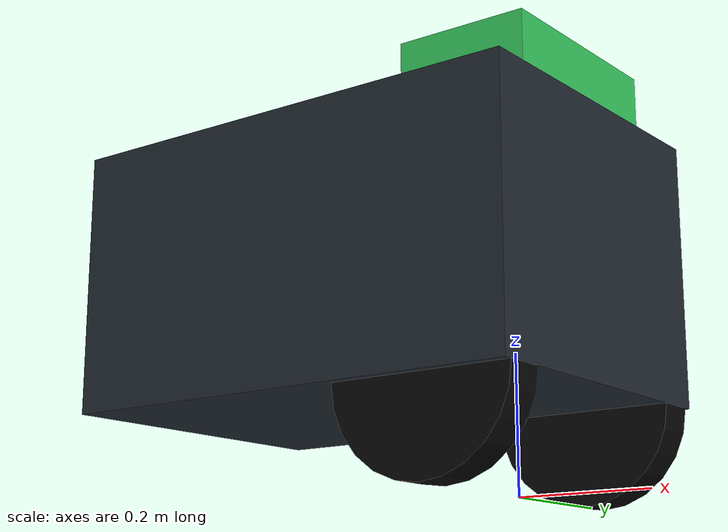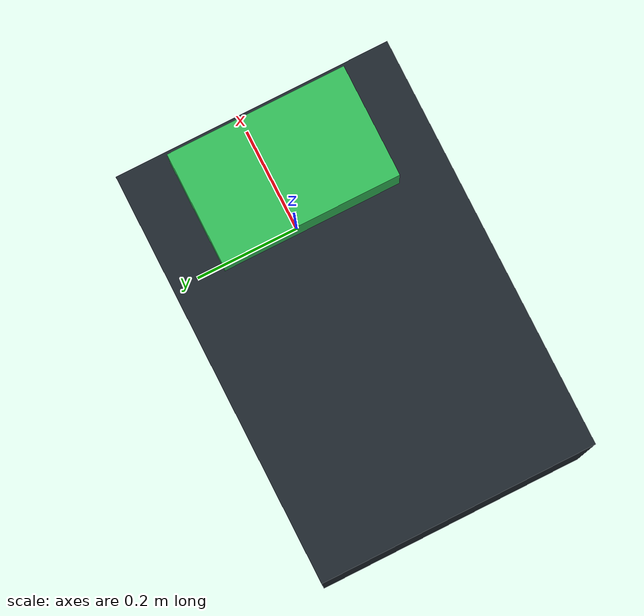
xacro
<?xml version="1.0"?>
<robot xmlns:xacro="http://www.ros.org/wiki/xacro" name="nova_carter">
  <!-- Values were extracted from the composed Isaac Sim 6.0 Nova Carter USD. -->
  <material name="nova_dark"><color rgba="0.12 0.15 0.18 1"/></material>
  <material name="nova_green"><color rgba="0.20 0.75 0.35 1"/></material>
  <material name="wheel_black"><color rgba="0.025 0.025 0.025 1"/></material>

  <link name="base_link">
    <visual>
      <origin xyz="-0.2335 0 0.34" rpy="0 0 0"/>
      <geometry><box size="0.747 0.50 0.40"/></geometry>
      <material name="nova_dark"/>
    </visual>
    <visual>
      <origin xyz="0.02 0 0.58" rpy="0 0 0"/>
      <geometry><box size="0.20 0.32 0.10"/></geometry>
      <material name="nova_green"/>
    </visual>
  </link>
  <link name="front_stereo_camera_link"/>
  <link name="front_stereo_camera_left_optical"/>
  <link name="front_stereo_camera_right_optical"/>
  <link name="front_stereo_camera_imu"/>

  <joint name="front_stereo_mount" type="fixed">
    <parent link="base_link"/><child link="front_stereo_camera_link"/>
    <origin xyz="0.1003 -0.000002 0.3459" rpy="0 0 0"/>
  </joint>
  <joint name="front_stereo_left_optical_joint" type="fixed">
    <parent link="front_stereo_camera_link"/><child link="front_stereo_camera_left_optical"/>
    <origin xyz="0 0.075 0" rpy="-1.57079632679 0 -1.57079632679"/>
  </joint>
  <joint name="front_stereo_right_optical_joint" type="fixed">
    <parent link="front_stereo_camera_link"/><child link="front_stereo_camera_right_optical"/>
    <origin xyz="0 -0.075 0" rpy="-1.57079632679 0 -1.57079632679"/>
  </joint>
  <joint name="front_stereo_imu_joint" type="fixed">
    <parent link="front_stereo_camera_link"/><child link="front_stereo_camera_imu"/>
    <origin xyz="0 -0.0197 0.0061" rpy="0 1.57079632679 0"/>
  </joint>

  <!-- Stage 9 surround Hawk baselines.  The midpoint poses and rotations are
       extracted from the local Isaac Sim 6.0.1 nova_carter.usd. -->
  <link name="left_stereo_camera_link"/>
  <link name="left_stereo_camera_left_optical"/>
  <link name="left_stereo_camera_right_optical"/>
  <joint name="left_stereo_mount" type="fixed">
    <parent link="base_link"/><child link="left_stereo_camera_link"/>
    <origin xyz="-0.35543 0.15 0.3459" rpy="0 0 1.57079632679"/>
  </joint>
  <joint name="left_stereo_left_optical_joint" type="fixed">
    <parent link="left_stereo_camera_link"/><child link="left_stereo_camera_left_optical"/>
    <origin xyz="0 0.075 0" rpy="-1.57079632679 0 -1.57079632679"/>
  </joint>
  <joint name="left_stereo_right_optical_joint" type="fixed">
    <parent link="left_stereo_camera_link"/><child link="left_stereo_camera_right_optical"/>
    <origin xyz="0 -0.075 0" rpy="-1.57079632679 0 -1.57079632679"/>
  </joint>

  <link name="right_stereo_camera_link"/>
  <link name="right_stereo_camera_left_optical"/>
  <link name="right_stereo_camera_right_optical"/>
  <joint name="right_stereo_mount" type="fixed">
    <parent link="base_link"/><child link="right_stereo_camera_link"/>
    <origin xyz="-0.35544 -0.15 0.3459" rpy="0 0 -1.57079632679"/>
  </joint>
  <joint name="right_stereo_left_optical_joint" type="fixed">
    <parent link="right_stereo_camera_link"/><child link="right_stereo_camera_left_optical"/>
    <origin xyz="0 0.075 0" rpy="-1.57079632679 0 -1.57079632679"/>
  </joint>
  <joint name="right_stereo_right_optical_joint" type="fixed">
    <parent link="right_stereo_camera_link"/><child link="right_stereo_camera_right_optical"/>
    <origin xyz="0 -0.075 0" rpy="-1.57079632679 0 -1.57079632679"/>
  </joint>

  <link name="back_stereo_camera_link"/>
  <link name="back_stereo_camera_left_optical"/>
  <link name="back_stereo_camera_right_optical"/>
  <joint name="back_stereo_mount" type="fixed">
    <parent link="base_link"/><child link="back_stereo_camera_link"/>
    <origin xyz="-0.5637 0.000002 0.3459" rpy="0 0 3.14159265359"/>
  </joint>
  <joint name="back_stereo_left_optical_joint" type="fixed">
    <parent link="back_stereo_camera_link"/><child link="back_stereo_camera_left_optical"/>
    <origin xyz="0 0.075 0" rpy="-1.57079632679 0 -1.57079632679"/>
  </joint>
  <joint name="back_stereo_right_optical_joint" type="fixed">
    <parent link="back_stereo_camera_link"/><child link="back_stereo_camera_right_optical"/>
    <origin xyz="0 -0.075 0" rpy="-1.57079632679 0 -1.57079632679"/>
  </joint>

  <link name="wheel_left">
    <visual><geometry><cylinder radius="0.14" length="0.06"/></geometry><material name="wheel_black"/></visual>
  </link>
  <link name="wheel_right">
    <visual><geometry><cylinder radius="0.14" length="0.06"/></geometry><material name="wheel_black"/></visual>
  </link>
  <joint name="joint_wheel_left" type="continuous">
    <parent link="base_link"/><child link="wheel_left"/>
    <origin xyz="0 0.2066 0.14" rpy="-1.57079632679 0 0"/><axis xyz="0 0 1"/>
  </joint>
  <joint name="joint_wheel_right" type="continuous">
    <parent link="base_link"/><child link="wheel_right"/>
    <origin xyz="0 -0.2066 0.14" rpy="-1.57079632679 0 0"/><axis xyz="0 0 1"/>
  </joint>

  <link name="caster_frame_base"/><link name="caster_swing_left"/>
  <link name="caster_swing_right"/><link name="caster_wheel_left"/>
  <link name="caster_wheel_right"/>
  <joint name="joint_caster_base" type="continuous">
    <parent link="base_link"/><child link="caster_frame_base"/>
    <origin xyz="-0.47195 0 0.22289" rpy="-1.57079632679 0 1.57079632679"/>
    <axis xyz="0 0 1"/>
  </joint>
  <joint name="joint_swing_left" type="continuous">
    <parent link="caster_frame_base"/><child link="caster_swing_left"/>
    <origin xyz="0.132296 0.031188 0" rpy="-1.57079632679 0 0"/>
    <axis xyz="0 0 1"/>
  </joint>
  <joint name="joint_swing_right" type="continuous">
    <parent link="caster_frame_base"/><child link="caster_swing_right"/>
    <origin xyz="-0.132296 0.031188 0" rpy="-1.57079632679 0 0"/>
    <axis xyz="0 0 1"/>
  </joint>
  <joint name="joint_caster_left" type="continuous">
    <parent link="caster_swing_left"/><child link="caster_wheel_left"/>
    <origin xyz="-0.04 0.115393 0" rpy="0 0 0"/><axis xyz="0 0 1"/>
  </joint>
  <joint name="joint_caster_right" type="continuous">
    <parent link="caster_swing_right"/><child link="caster_wheel_right"/>
    <origin xyz="-0.04 0.115393 0" rpy="0 0 0"/><axis xyz="0 0 1"/>
  </joint>
</robot>
